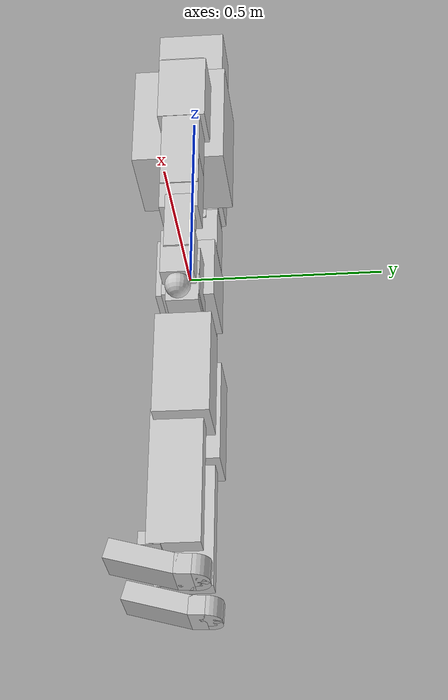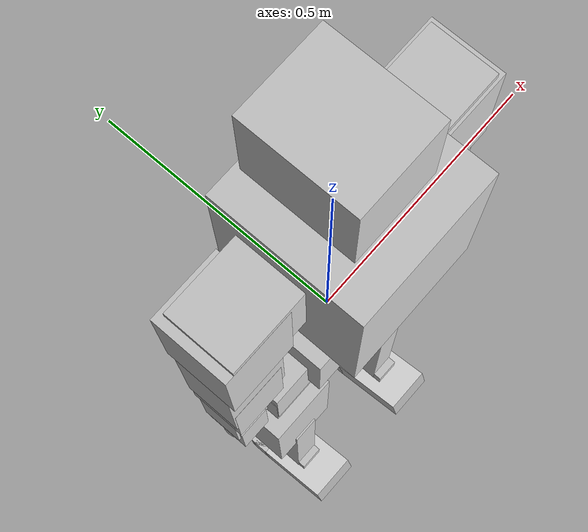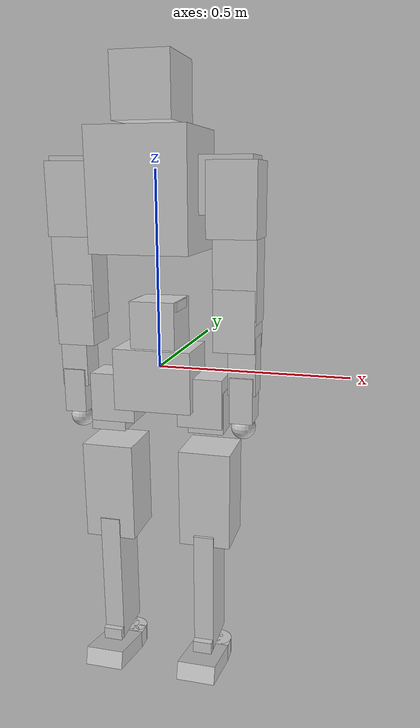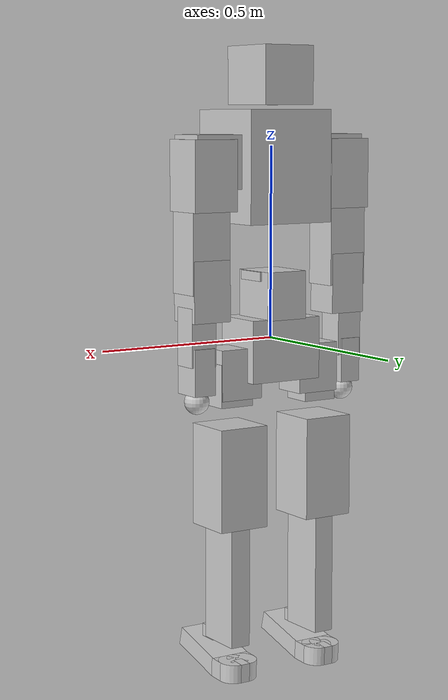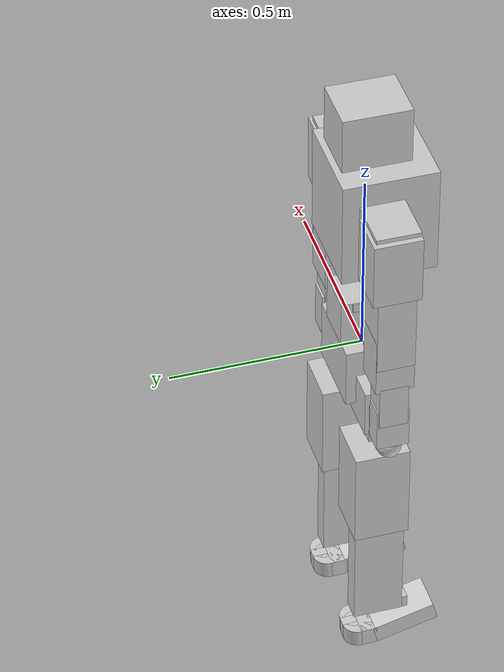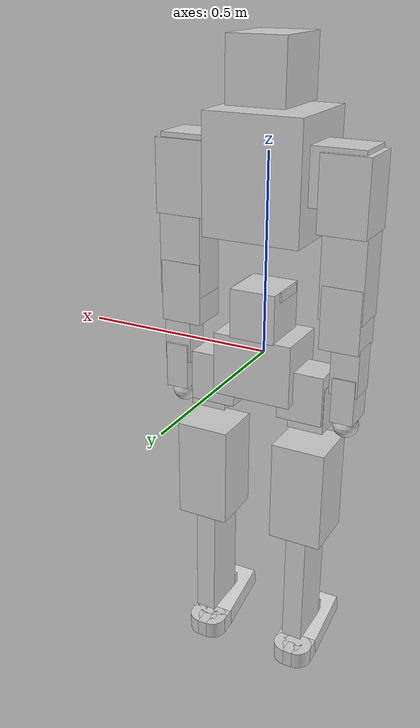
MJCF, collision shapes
<?xml version='1.0' encoding='utf-8'?>
<mujoco model="bello_full_body">
  <option timestep="0.005" gravity="0 0 -9.81" integrator="implicitfast" />
  <compiler angle="radian" />
  <asset>
    <mesh name="pelvis_link" file="../meshes/pelvis_link.stl" scale="0.001 0.001 0.001" />
    <mesh name="left_hip_pitch_link" file="../meshes/left_hip_pitch_link.stl" scale="0.001 0.001 0.001" />
    <mesh name="left_hip_roll_link" file="../meshes/left_hip_roll_link.stl" scale="0.001 0.001 0.001" />
    <mesh name="left_hip_yaw_link" file="../meshes/left_hip_yaw_link.stl" scale="0.001 0.001 0.001" />
    <mesh name="left_knee_link" file="../meshes/left_knee_link.stl" scale="0.001 0.001 0.001" />
    <mesh name="left_ankle_pitch_link" file="../meshes/left_ankle_pitch_link.stl" scale="0.001 0.001 0.001" />
    <mesh name="right_hip_pitch_link" file="../meshes/right_hip_pitch_link.stl" scale="0.001 0.001 0.001" />
    <mesh name="right_hip_roll_link" file="../meshes/right_hip_roll_link.stl" scale="0.001 0.001 0.001" />
    <mesh name="right_hip_yaw_link" file="../meshes/right_hip_yaw_link.stl" scale="0.001 0.001 0.001" />
    <mesh name="right_knee_link" file="../meshes/right_knee_link.stl" scale="0.001 0.001 0.001" />
    <mesh name="right_ankle_pitch_link" file="../meshes/right_ankle_pitch_link.stl" scale="0.001 0.001 0.001" />
    <mesh name="waist_yaw_link" file="../meshes/waist_yaw_link.stl" scale="0.001 0.001 0.001" />
    <mesh name="waist_roll_link" file="../meshes/waist_roll_link.stl" scale="0.001 0.001 0.001" />
    <mesh name="torso_link" file="../meshes/torso_link.stl" scale="0.001 0.001 0.001" />
    <mesh name="neck_link" file="../meshes/neck_link.stl" scale="0.001 0.001 0.001" />
    <mesh name="head_link" file="../meshes/head_link.stl" scale="0.001 0.001 0.001" />
    <mesh name="r_shoulder_pitch_link" file="../meshes/r_shoulder_pitch_link.stl" scale="0.001 0.001 0.001" />
    <mesh name="r_shoulder_roll_link" file="../meshes/r_shoulder_roll_link.stl" scale="0.001 0.001 0.001" />
    <mesh name="r_upper_arm_link" file="../meshes/r_upper_arm_link.stl" scale="0.001 0.001 0.001" />
    <mesh name="r_elbow_link" file="../meshes/r_elbow_link.stl" scale="0.001 0.001 0.001" />
    <mesh name="r_lower_arm_link" file="../meshes/r_lower_arm_link.stl" scale="0.001 0.001 0.001" />
    <mesh name="r_wrist_link" file="../meshes/r_wrist_link.stl" scale="0.001 0.001 0.001" />
    <mesh name="l_shoulder_pitch_link" file="../meshes/l_shoulder_pitch_link.stl" scale="0.001 0.001 0.001" />
    <mesh name="l_shoulder_roll_link" file="../meshes/l_shoulder_roll_link.stl" scale="0.001 0.001 0.001" />
    <mesh name="l_upper_arm_link" file="../meshes/l_upper_arm_link.stl" scale="0.001 0.001 0.001" />
    <mesh name="l_elbow_link" file="../meshes/l_elbow_link.stl" scale="0.001 0.001 0.001" />
    <mesh name="l_lower_arm_link" file="../meshes/l_lower_arm_link.stl" scale="0.001 0.001 0.001" />
    <mesh name="l_wrist_link" file="../meshes/l_wrist_link.stl" scale="0.001 0.001 0.001" />
    <mesh name="pelvis_link_visual" file="../visual_meshes/pelvis_link_visual.stl" scale="0.001 0.001 0.001" />
    <mesh name="left_hip_pitch_link_visual" file="../visual_meshes/left_hip_pitch_link_visual.stl" scale="0.001 0.001 0.001" />
    <mesh name="left_hip_roll_link_visual" file="../visual_meshes/left_hip_roll_link_visual.stl" scale="0.001 0.001 0.001" />
    <mesh name="left_hip_yaw_link_visual" file="../visual_meshes/left_hip_yaw_link_visual.stl" scale="0.001 0.001 0.001" />
    <mesh name="left_knee_link_visual" file="../visual_meshes/left_knee_link_visual.stl" scale="0.001 0.001 0.001" />
    <mesh name="left_ankle_pitch_link_visual" file="../visual_meshes/left_ankle_pitch_link_visual.stl" scale="0.001 0.001 0.001" />
    <mesh name="left_ankle_roll_link_visual" file="../visual_meshes/left_ankle_roll_link_visual.stl" scale="0.001 0.001 0.001" />
    <mesh name="right_hip_pitch_link_visual" file="../visual_meshes/right_hip_pitch_link_visual.stl" scale="0.001 0.001 0.001" />
    <mesh name="right_hip_roll_link_visual" file="../visual_meshes/right_hip_roll_link_visual.stl" scale="0.001 0.001 0.001" />
    <mesh name="right_hip_yaw_link_visual" file="../visual_meshes/right_hip_yaw_link_visual.stl" scale="0.001 0.001 0.001" />
    <mesh name="right_knee_link_visual" file="../visual_meshes/right_knee_link_visual.stl" scale="0.001 0.001 0.001" />
    <mesh name="right_ankle_pitch_link_visual" file="../visual_meshes/right_ankle_pitch_link_visual.stl" scale="0.001 0.001 0.001" />
    <mesh name="right_ankle_roll_link_visual" file="../visual_meshes/right_ankle_roll_link_visual.stl" scale="0.001 0.001 0.001" />
    <mesh name="waist_yaw_link_visual" file="../visual_meshes/waist_yaw_link_visual.stl" scale="0.001 0.001 0.001" />
    <mesh name="waist_roll_link_visual" file="../visual_meshes/waist_roll_link_visual.stl" scale="0.001 0.001 0.001" />
    <mesh name="torso_link_visual" file="../visual_meshes/torso_link_visual.stl" scale="0.001 0.001 0.001" />
    <mesh name="neck_link_visual" file="../visual_meshes/neck_link_visual.stl" scale="0.001 0.001 0.001" />
    <mesh name="head_link_visual" file="../visual_meshes/head_link_visual.stl" scale="0.001 0.001 0.001" />
    <mesh name="r_shoulder_pitch_link_visual" file="../visual_meshes/r_shoulder_pitch_link_visual.stl" scale="0.001 0.001 0.001" />
    <mesh name="r_shoulder_roll_link_visual" file="../visual_meshes/r_shoulder_roll_link_visual.stl" scale="0.001 0.001 0.001" />
    <mesh name="r_upper_arm_link_visual" file="../visual_meshes/r_upper_arm_link_visual.stl" scale="0.001 0.001 0.001" />
    <mesh name="r_elbow_link_visual" file="../visual_meshes/r_elbow_link_visual.stl" scale="0.001 0.001 0.001" />
    <mesh name="r_lower_arm_link_visual" file="../visual_meshes/r_lower_arm_link_visual.stl" scale="0.001 0.001 0.001" />
    <mesh name="r_wrist_link_visual" file="../visual_meshes/r_wrist_link_visual.stl" scale="0.001 0.001 0.001" />
    <mesh name="l_shoulder_pitch_link_visual" file="../visual_meshes/l_shoulder_pitch_link_visual.stl" scale="0.001 0.001 0.001" />
    <mesh name="l_shoulder_roll_link_visual" file="../visual_meshes/l_shoulder_roll_link_visual.stl" scale="0.001 0.001 0.001" />
    <mesh name="l_upper_arm_link_visual" file="../visual_meshes/l_upper_arm_link_visual.stl" scale="0.001 0.001 0.001" />
    <mesh name="l_elbow_link_visual" file="../visual_meshes/l_elbow_link_visual.stl" scale="0.001 0.001 0.001" />
    <mesh name="l_lower_arm_link_visual" file="../visual_meshes/l_lower_arm_link_visual.stl" scale="0.001 0.001 0.001" />
    <mesh name="l_wrist_link_visual" file="../visual_meshes/l_wrist_link_visual.stl" scale="0.001 0.001 0.001" />
  </asset>
  <worldbody>
    <body name="bello_root">
      <freejoint name="root_free" />
      <body name="pelvis_link">
        <inertial pos="0.000202669 0.000321424 0.0107295" quat="0.706916 0.0159064 0.00611244 0.707092" mass="5.89767" diaginertia="0.0312574 0.0252258 0.0230744" />
        <geom name="pelvis_link_collision" type="box" pos="2.0709991e-05 1.6269684e-05 -0.024007189" size="0.103535 0.07448373 0.081729887" rgba="0.8 0.8 0.8 0" />
        <body name="left_hip_pitch_link" pos="-0.074208 0 -0.0500658" quat="0.5 0 -0.866025 0">
          <inertial pos="3.94635e-05 0.00298891 0.0581141" quat="0.983847 -0.0469592 -0.171308 -0.022212" mass="1.5902" diaginertia="0.00320422 0.0029649 0.00235726" />
          <joint name="left_hip_pitch_joint" pos="0 0 0" axis="-2.01892e-07 0 1" range="-1.5708 1.5708" actuatorfrcrange="-120 120" />
          <geom name="left_hip_pitch_link_collision" pos="-0.0055080189 0 0.056567297" quat="-0.5 0 -0.866025 0" type="box" size="0.060306705 0.048 0.06542677" rgba="0.8 0.8 0.8 0" />
          <body name="left_hip_roll_link" pos="-0.015 0.0275 0.078" quat="-0.353553 -0.353553 -0.612372 0.612372">
            <inertial pos="0.000231238 -0.0521909 0.0302062" quat="0.660826 0.750539 0.000939378 -0.00071281" mass="1.48802" diaginertia="0.00430649 0.00405718 0.00198016" />
            <joint name="left_hip_roll_joint" pos="0 0 0" axis="0 0 1" range="-1.5708 1.5708" actuatorfrcrange="-60 60" />
            <geom name="left_hip_roll_link_collision" pos="-2.7743713e-05 -0.011542096 0.031979977" quat="0.707107 -0.707107 0 0" type="box" size="0.047350609 0.041479904 0.0604685" rgba="0.8 0.8 0.8 0" />
            <body name="left_hip_yaw_link" pos="3.178e-05 -0.072 0.0275" quat="0.00015609 -0.00015609 0.707107 -0.707107">
              <inertial pos="-0.00017432 0.0025829 0.132024" quat="0.706849 -0.0189517 0.0191077 0.706853" mass="4.93723" diaginertia="0.0255658 0.0249308 0.0118932" />
              <joint name="left_hip_yaw_joint" pos="0 0 0" axis="4.88867e-07 0 1" range="-1.5708 1.5708" actuatorfrcrange="-60 60" />
              <geom name="left_hip_yaw_link_collision" pos="0.00051881962 0.0056284866 0.17520377" quat="-0.000220744 0 1 0" type="box" size="0.070200081 0.071601624 0.13571301" rgba="0.8 0.8 0.8 0" />
              <body name="left_knee_link" pos="-0.0095 0 0.280941" quat="0.707107 0 0.707107 0">
                <inertial pos="-0.139841 -0.0139537 0.00956892" quat="-0.102336 0.701871 0.0991192 0.697911" mass="2.90716" diaginertia="0.0244174 0.0235746 0.00354232" />
                <joint name="left_knee_joint" pos="0 0 0" axis="4.88867e-07 0 1" range="0 2.0944" actuatorfrcrange="-120 120" />
                <geom name="left_knee_link_collision" pos="-0.16346685 -0.004106987 0.0094499111" quat="0.706951 0 0.707263 0" type="box" size="0.027530079 0.065521202 0.18894237" rgba="0.8 0.8 0.8 0" />
                <body name="left_ankle_pitch_link" pos="-0.334898 -0.0586775 -0.01" quat="0 1 0 0">
                  <inertial pos="0.0128998 2.83574e-08 -0.00817509" quat="0.991445 1.44061e-05 -0.000109428 -0.130523" mass="0.0463658" diaginertia="9.67925e-06 8.54909e-06 3.02578e-06" />
                  <joint name="left_ankle_pitch_joint" pos="0 0 0" axis="-4.88867e-07 0 1" range="-0.5236 1.0472" actuatorfrcrange="-40 40" />
                  <geom name="left_ankle_pitch_link_collision" pos="6.3331507e-07 -1.4409262e-07 -0.019499603" quat="0 0.706951 0 0.707263" type="box" size="0.026503742 0.026814933 0.016975616" rgba="0.8 0.8 0.8 0" />
                  <body name="left_ankle_roll_link" pos="-0.0064703 -0.0241482 -0.0195" quat="0.430581 0.561076 0.430342 -0.560892">
                    <inertial pos="-7.2274e-05 -0.027664 -0.00509084" quat="0.706463 0.031921 -0.0318874 0.70631" mass="1.37231" diaginertia="0.00762962 0.00699076 0.00198039" />
                    <joint name="left_ankle_roll_joint" pos="0 0 0" axis="2.6273e-07 2.65238e-07 1" range="-0.1745 0.1745" actuatorfrcrange="-40 40" />
                    <geom name="left_ankle_roll_link_collision_box_1" size="0.053 0.085035 0.025" pos="-0.00012931 -0.0557586 -0.0250295" quat="-4.03978e-05 4.03981e-05 0.707104 0.707109" type="box" rgba="0.8 0.8 0.8 0" />
                    <geom name="left_ankle_roll_link_collision_box_2" size="0.013 0.02 0.025" pos="-0.00011327 -0.0434219 0.115348" quat="-4.43993e-05 3.59541e-05 0.777144 0.629323" type="box" rgba="0.8 0.8 0.8 0" />
                    <geom name="left_ankle_roll_link_collision_box_3" size="0.053 0.020975 0.025" pos="-0.00011785 -0.0519404 0.0752713" quat="-4.43993e-05 3.59541e-05 0.777144 0.629323" type="box" rgba="0.8 0.8 0.8 0" />
                    <geom name="left_ankle_roll_link_collision_cylinder_1" size="0.04 0.025" pos="-0.0131155 -0.0475817 0.0957789" quat="-4.43993e-05 3.59541e-05 0.777144 0.629323" type="cylinder" rgba="0.8 0.8 0.8 0" />
                    <geom name="left_ankle_roll_link_collision_cylinder_2" size="0.04 0.025" pos="0.0128845 -0.0475817 0.0957759" quat="-4.43993e-05 3.59541e-05 0.777144 0.629323" type="cylinder" rgba="0.8 0.8 0.8 0" />
                    <geom name="left_ankle_roll_link_visual" type="mesh" mesh="left_ankle_roll_link_visual" contype="0" conaffinity="0" group="1" pos="-0.13397118874641967 0.7781687253169265 -0.17274116763904332" quat="-4.5325223e-05 3.4779523e-05 0.79335118 0.60876425" />
                  </body>
                  <geom name="left_ankle_pitch_link_visual" type="mesh" mesh="left_ankle_pitch_link_visual" contype="0" conaffinity="0" group="1" pos="0.789836662721809 -0.05867748 0.11480302524804908" quat="4.330736e-17 0.70695067 -4.3288244e-17 0.70726285" />
                </body>
                <geom name="left_knee_link_visual" type="mesh" mesh="left_knee_link_visual" contype="0" conaffinity="0" group="1" pos="0.45493823519251964 0.0 -0.1248030323095103" quat="0.70695067 1.9115497e-20 0.70726285 1.9115497e-20" />
              </body>
              <geom name="left_hip_yaw_link_visual" type="mesh" mesh="left_hip_yaw_link_visual" contype="0" conaffinity="0" group="1" pos="-0.13430303076388805 0.0 -0.1739968736698928" quat="-0.00022074442 6.1245855e-17 0.99999998 6.1245855e-17" />
            </body>
            <geom name="left_hip_roll_link_visual" type="mesh" mesh="left_hip_roll_link_visual" contype="0" conaffinity="0" group="1" pos="0.13425798 0.10205615999999999 0.0275" quat="0.70710678 -0.70710678 -0 0" />
          </body>
          <geom name="left_hip_pitch_link_visual" type="mesh" mesh="left_hip_pitch_link_visual" contype="0" conaffinity="0" group="1" pos="0.006254237340263292 -1.5285649967993768e-16 -0.089298903164037" quat="-0.5 -8.6080105e-16 -0.8660254 1.4297188e-15" />
        </body>
        <body name="right_hip_pitch_link" pos="0.074208 0 -0.0500658" quat="0.5 0 0.866025 0">
          <inertial pos="-3.94635e-05 -0.00298891 0.0581141" quat="0.983847 0.0469592 0.171308 -0.022212" mass="1.5902" diaginertia="0.00320422 0.0029649 0.00235726" />
          <joint name="right_hip_pitch_joint" pos="0 0 0" axis="2.01892e-07 0 1" range="-1.5708 1.5708" actuatorfrcrange="-120 120" />
          <geom name="right_hip_pitch_link_collision" pos="0.0048585007 0 0.056192298" quat="-0.5 0 0.866025 0" type="box" size="0.060306705 0.048 0.06617677" rgba="0.8 0.8 0.8 0" />
          <body name="right_hip_roll_link" pos="0.015 -0.0275 0.078" quat="-0.353553 0.353553 0.612372 0.612372">
            <inertial pos="-0.000231238 0.0521909 0.0302062" quat="0.750539 0.660826 -0.00071281 0.000939378" mass="1.48802" diaginertia="0.00430649 0.00405718 0.00198016" />
            <joint name="right_hip_roll_joint" pos="0 0 0" axis="0 0 1" range="-1.5708 1.5708" actuatorfrcrange="-60 60" />
            <geom name="right_hip_roll_link_collision" pos="1.9234467e-05 0.0078806382 0.03192507" quat="0.707107 0.707107 0 0" type="box" size="0.047286579 0.041424999 0.056360516" rgba="0.8 0.8 0.8 0" />
            <body name="right_hip_yaw_link" pos="0 0.072 0.0275" quat="0.707107 -0.707107 0 0">
              <inertial pos="-0.000264387 -0.0025829 0.132024" quat="0.706849 0.0189517 -0.0191077 0.706853" mass="4.93723" diaginertia="0.0255658 0.0249308 0.0118932" />
              <joint name="right_hip_yaw_joint" pos="0 0 0" axis="0 0 1" range="-1.5708 1.5708" actuatorfrcrange="-60 60" />
              <geom name="right_hip_yaw_link_collision" pos="0.00043298035 -0.011513824 0.17642353" quat="0 1 0 0" type="box" size="0.070133011 0.069942612 0.13449837" rgba="0.8 0.8 0.8 0" />
              <body name="right_knee_link" pos="0.00950001 0 0.280941" quat="0 -0.707107 0 0.707107">
                <inertial pos="-0.139841 -0.0139537 0.00964864" quat="-0.0991418 0.698066 0.102314 0.701717" mass="2.90716" diaginertia="0.0244174 0.0235746 0.00354232" />
                <joint name="right_knee_joint" pos="0 0 0" axis="0 0 1" range="0 2.0944" actuatorfrcrange="-120 120" />
                <geom name="right_knee_link_collision" pos="-0.17481932 -0.0022716771 0.0095003366" quat="0.707107 0 0.707107 0" type="box" size="0.027499996 0.064957396 0.17468437" rgba="0.8 0.8 0.8 0" />
                <body name="right_ankle_pitch_link" pos="-0.334898 -0.0586775 -0.01" quat="0 1 0 0">
                  <inertial pos="0.0129049 2.83574e-08 -0.0311229" quat="0.991445 1.44061e-05 -0.000109428 -0.130523" mass="0.0463658" diaginertia="9.67925e-06 8.54909e-06 3.02578e-06" />
                  <joint name="right_ankle_pitch_joint" pos="0 0 0" axis="0 0 1" range="-0.5236 1.0472" actuatorfrcrange="-40 40" />
                  <geom name="right_ankle_pitch_link_collision" pos="2.2582944e-07 3.4741624e-06 -0.019499458" quat="0 -0.707107 0 -0.707107" type="box" size="0.026499996 0.026874038 0.016975708" rgba="0.8 0.8 0.8 0" />
                  <body name="right_ankle_roll_link" pos="-0.00647031 -0.0241482 -0.0195" quat="0.560984 0.430461 -0.560984 0.430461">
                    <inertial pos="-0.000378232 0.0276639 -0.00509087" quat="0.706312 -0.0319278 0.0318806 0.706461" mass="1.37231" diaginertia="0.00762962 0.00699076 0.00198039" />
                    <joint name="right_ankle_roll_joint" pos="0 0 0" axis="0 -2.89601e-07 1" range="-0.1745 0.1745" actuatorfrcrange="-40 40" />
                    <geom name="right_ankle_roll_link_collision_box_1" size="0.053 0.085035 0.025" pos="0 0.056 -0.0249648" quat="0.707109 0.707104 0 0" type="box" rgba="0.8 0.8 0.8 0" />
                    <geom name="right_ankle_roll_link_collision_box_2" size="0.013 0.02 0.025" pos="0 0.0436634 0.115412" quat="0.629323 0.777144 0 0" type="box" rgba="0.8 0.8 0.8 0" />
                    <geom name="right_ankle_roll_link_collision_box_3" size="0.053 0.020975 0.025" pos="0 0.0521818 0.075336" quat="0.629323 0.777144 0 0" type="box" rgba="0.8 0.8 0.8 0" />
                    <geom name="right_ankle_roll_link_collision_cylinder_1" size="0.04 0.025" pos="-0.013 0.0478231 0.0958421" quat="0.629323 0.777144 0 0" type="cylinder" rgba="0.8 0.8 0.8 0" />
                    <geom name="right_ankle_roll_link_collision_cylinder_2" size="0.04 0.025" pos="0.013 0.0478231 0.0958421" quat="0.629323 0.777144 0 0" type="cylinder" rgba="0.8 0.8 0.8 0" />
                    <geom name="right_ankle_roll_link_visual" type="mesh" mesh="right_ankle_roll_link_visual" contype="0" conaffinity="0" group="1" pos="-0.13382497731765536 -0.777927306787565 -0.17269180847454368" quat="0.60876424 0.79335119 0 0" />
                  </body>
                  <geom name="right_ankle_pitch_link_visual" type="mesh" mesh="right_ankle_pitch_link_visual" contype="0" conaffinity="0" group="1" pos="0.7896459399881726 -0.05867747996481914 -0.15332497731765535" quat="4.3297803e-17 -0.70710678 -4.3297803e-17 -0.70710678" />
                </body>
                <geom name="right_knee_link_visual" type="mesh" mesh="right_knee_link_visual" contype="0" conaffinity="0" group="1" pos="0.45474751998817253 -3.51809074956968e-11 0.1433249773176553" quat="0.70710678 -0 0.70710678 0" />
              </body>
              <geom name="right_hip_yaw_link_visual" type="mesh" mesh="right_hip_yaw_link_visual" contype="0" conaffinity="0" group="1" pos="-0.13382496731765536 3.517818966973252e-11 -0.17380615998817248" quat="6.123234e-17 1 0 0" />
            </body>
            <geom name="right_hip_roll_link_visual" type="mesh" mesh="right_hip_roll_link_visual" contype="0" conaffinity="0" group="1" pos="-0.13382496731650065 -0.1018061599881725 0.027500000000046182" quat="0.70710678 0.70710678 -1.9626156e-17 -1.9626156e-17" />
          </body>
          <geom name="right_hip_pitch_link_visual" type="mesh" mesh="right_hip_pitch_link_visual" contype="0" conaffinity="0" group="1" pos="-0.006254237340286433 -5.700018013619654e-16 -0.08879890316400728" quat="-0.5 8.3644932e-17 0.8660254 8.3644932e-17" />
        </body>
        <body name="waist_yaw_link" pos="0 0 0.0575">
          <inertial pos="-1.20986e-11 0.00628053 0.0506612" quat="0.502671 0.497315 -0.497315 0.502671" mass="0.560466" diaginertia="0.00187996 0.000973196 0.000945286" />
          <joint name="waist_yaw_joint" pos="0 0 0" axis="0 0 1" range="-0.785398163 0.785398163" actuatorfrcrange="-120 120" />
          <geom name="waist_yaw_link_collision" pos="0.0001003685 0.0080750484 0.059734848" quat="1 0 0 0" type="box" rgba="0.8 0.8 0.8 0" size="0.05909071 0.066924952 0.062734848" />
          <body name="waist_roll_link" pos="0 0.04 0.1095">
            <geom name="waist_roll_link_collision" pos="0 -0.04 6.9388939e-18" quat="1 0 0 0" type="box" rgba="0.8 0.8 0.8 0" size="0.063 0.045 0.012" mass="0" />
            <body name="torso_link" pos="0 -0.04 0">
              <inertial pos="0.000740166 -0.0124644 0.221762" quat="0.713142 -0.0193755 0.0416243 0.699514" mass="12.1237" diaginertia="0.122813 0.108053 0.0668055" />
              <geom name="torso_link_collision" pos="0.0013604202 -0.027035789 0.28224463" quat="1 0 0 0" type="box" rgba="0.8 0.8 0.8 0" size="0.12363958 0.12205076 0.14475537" />
              <body name="neck_link" pos="0 0.01 0.424">
                <inertial pos="0.0069897 -3.17984e-08 0.0301398" quat="0.983583 0 0.180459 0" mass="0.0661092" diaginertia="4.28269e-05 3.86881e-05 1.55218e-05" />
                <geom name="neck_link_collision" pos="0.042436116 -8.090353e-05 0.054988342" quat="1 0 0 0" type="box" rgba="0.8 0.8 0.8 0" size="0.0234136 0.021869096 0.022959656" />
                <body name="head_link" pos="0.063 0 0.054997">
                  <inertial pos="-0.0636714 -0.00132237 0.0419138" quat="0.484242 0.514212 -0.449671 0.54671" mass="0.603675" diaginertia="0.00319428 0.00270003 0.00244996" />
                  <geom name="head_link_collision" pos="-0.063678585 -0.015789494 0.035003168" type="box" rgba="0.8 0.8 0.8 0" size="0.073278584 0.088306881 0.074999832" />
                  <body name="head_camera_frame_link" pos="-0.033 0.063443 0.026953" />
                  <body name="head_left_camera_frame_link" pos="-0.134 -0.02 0.055" />
                  <body name="head_right_camera_frame_link" pos="0.008 -0.02 0.055" />
                  <geom name="head_link_visual" type="mesh" mesh="head_link_visual" contype="0" conaffinity="0" group="1" pos="-0.063 -0.01 -0.530997" quat="1 0 0 0" />
                </body>
                <geom name="neck_link_visual" type="mesh" mesh="neck_link_visual" contype="0" conaffinity="0" group="1" pos="-0.0 -0.01 -0.476" quat="1 0 0 0" />
              </body>
              <body name="r_shoulder_pitch_link" pos="0.1095 0 0.295">
                <inertial pos="0.0785965 -0.00240127 1.20702e-05" quat="0.489305 0.495679 0.50465 0.51011" mass="1.50376" diaginertia="0.00328032 0.00278296 0.00200863" />
                <joint name="right_shoulder_pitch_joint" pos="0 0 0" axis="1 0 0" range="-0.785398 2.96706" actuatorfrcrange="-120 120" />
                <geom name="r_shoulder_pitch_link_collision" pos="0.073291489 -0.0012742825 6.5429688e-05" quat="1 0 0 0" type="box" rgba="0.8 0.8 0.8 0" size="0.073791489 0.055710917 0.06893457" />
                <body name="r_shoulder_roll_link" pos="0.091 -0.0275 0">
                  <inertial pos="0.0121774 0.0266984 -0.0650075" quat="0.994528 0.0183466 -0.102848 -0.000697108" mass="1.37453" diaginertia="0.00520445 0.00446014 0.00273623" />
                  <joint name="right_shoulder_roll_joint" pos="0 0 0" axis="0 -1 0" range="-0.2 2" actuatorfrcrange="-60 60" />
                  <geom name="r_shoulder_roll_link_collision" pos="0.0053169785 0.027499998 -0.033638405" type="box" rgba="0.8 0.8 0.8 0" size="0.062563362 0.061500013 0.09086158" />
                  <body name="r_upper_arm_link" pos="0.018002 0.0275 -0.124499">
                    <inertial pos="-0.0086503 -0.00528 -0.119379" quat="0.769049 0.0300888 0.0506837 0.636466" mass="1.31383" diaginertia="0.00591888 0.00586467 0.0014449" />
                    <joint name="right_shoulder_yaw_joint" pos="0 0 0" axis="-4.4e-05 0 1" range="-1.5 2" actuatorfrcrange="-36 36" />
                    <geom name="r_upper_arm_link_collision" pos="-0.0062463085 2.6702881e-08 -0.087493729" quat="1 0 0 0" type="box" rgba="0.8 0.8 0.8 0" size="0.055246567 0.048867447 0.12099599" />
                    <body name="r_elbow_link" pos="-0.014993 -0.02575 -0.162001">
                      <inertial pos="0.0158127 0.0259655 -0.0539569" quat="0.992211 -0.00380333 -0.124506 -0.000932466" mass="0.715824" diaginertia="0.00241193 0.00208131 0.000851117" />
                      <joint name="right_elbow_pitch_joint" pos="0 0 0" axis="0 1 0" range="-0.15 2.4" actuatorfrcrange="-36 36" />
                      <geom name="r_elbow_link_collision" pos="0.0072497585 0.025750088 -0.038834774" type="box" rgba="0.8 0.8 0.8 0" size="0.053729736 0.049250015 0.07916325" />
                      <body name="r_lower_arm_link" pos="0.025005 0.02575 -0.117998">
                        <inertial pos="-0.000227289 0.00388846 -0.0626326" quat="0.99932 0.036782 0.00253972 -6.59347e-05" mass="0.536588" diaginertia="0.000948942 0.000816287 0.000368573" />
                        <joint name="right_elbow_yaw_joint" pos="0 0 0" axis="-4.4e-05 0 1" range="-0.523599 2.0944" actuatorfrcrange="-14 14" />
                        <geom name="r_lower_arm_link_collision" pos="4.0504395e-05 0.0014679947 -0.038003589" quat="1 0 0 0" type="box" rgba="0.8 0.8 0.8 0" size="0.035963593 0.035597202 0.076003172" />
                        <body name="r_wrist_link" pos="4e-06 0.0275 -0.086">
                          <inertial pos="9.17713e-07 -0.0247501 -0.0187826" quat="0.667438 0.744665 -1.46192e-05 1.63135e-05" mass="0.122562" diaginertia="0.00015856 0.000124266 7.33223e-05" />
                          <joint name="right_wrist_pitch_joint" pos="0 0 0" axis="0 -1 0" range="-1.5 1.5" actuatorfrcrange="-14 14" />
                          <geom name="r_wrist_link_collision" pos="0.00056383289 -0.026768002 -0.041212674" quat="1 0 0 0" type="box" rgba="0.8 0.8 0.8 0" size="0.030320023 0.042474491 0.060788517" />
                          <body name="r_end_effector_sphere_link" pos="5e-06 -0.0275 -0.102" quat="0 0 0 1">
                            <geom name="r_end_effector_sphere_link_collision" size="0.0325" pos="0 0 -0.02" rgba="0.8 0.8 0.8 0" mass="0" />
                          </body>
                          <geom name="r_wrist_link_visual" type="mesh" mesh="r_wrist_link_visual" contype="0" conaffinity="0" group="1" pos="-0.228518 -0.0275 0.143498" quat="1 0 0 0" />
                        </body>
                        <geom name="r_lower_arm_link_visual" type="mesh" mesh="r_lower_arm_link_visual" contype="0" conaffinity="0" group="1" pos="-0.228514 -0.0 0.057498" quat="1 0 0 0" />
                      </body>
                      <geom name="r_elbow_link_visual" type="mesh" mesh="r_elbow_link_visual" contype="0" conaffinity="0" group="1" pos="-0.203509 0.02575 -0.0605" quat="1 0 0 0" />
                    </body>
                    <geom name="r_upper_arm_link_visual" type="mesh" mesh="r_upper_arm_link_visual" contype="0" conaffinity="0" group="1" pos="-0.218502 -0.0 -0.222501" quat="1 0 0 0" />
                  </body>
                  <geom name="r_shoulder_roll_link_visual" type="mesh" mesh="r_shoulder_roll_link_visual" contype="0" conaffinity="0" group="1" pos="-0.2005 0.0275 -0.347" quat="1 0 0 0" />
                </body>
                <geom name="r_shoulder_pitch_link_visual" type="mesh" mesh="r_shoulder_pitch_link_visual" contype="0" conaffinity="0" group="1" pos="-0.1095 -0.0 -0.347" quat="1 0 0 0" />
              </body>
              <body name="l_shoulder_pitch_link" pos="-0.1095 0 0.295">
                <inertial pos="-0.0785965 0.00240127 1.20702e-05" quat="0.495679 0.489305 0.51011 0.50465" mass="1.50376" diaginertia="0.00328032 0.00278296 0.00200863" />
                <joint name="left_shoulder_pitch_joint" pos="0 0 0" axis="-1 0 0" range="-2.96706 0.785398" actuatorfrcrange="-120 120" />
                <geom name="l_shoulder_pitch_link_collision" pos="-0.071638062 -0.0047969627 3.1951904e-05" quat="1 0 0 0" type="box" rgba="0.8 0.8 0.8 0" size="0.072138062 0.05665604 0.068901093" />
                <body name="l_shoulder_roll_link" pos="-0.091 0.0275 0">
                  <inertial pos="-0.0121774 -0.0266984 -0.0650075" quat="0.994528 -0.0183466 0.102848 -0.000697108" mass="1.37453" diaginertia="0.00520445 0.00446014 0.00273623" />
                  <joint name="left_shoulder_roll_joint" pos="0 0 0" axis="0 1 0" range="-0.2 2" actuatorfrcrange="-60 60" />
                  <geom name="l_shoulder_roll_link_collision" pos="-0.0078114548 -0.0275 -0.033638412" type="box" rgba="0.8 0.8 0.8 0" size="0.059711189 0.0615 0.090861588" />
                  <body name="l_upper_arm_link" pos="-0.018002 -0.0275 -0.124499">
                    <inertial pos="0.0086503 0.00528 -0.119379" quat="0.769049 -0.0300888 -0.0506837 0.636466" mass="1.31383" diaginertia="0.00591888 0.00586467 0.0014449" />
                    <joint name="left_shoulder_yaw_joint" pos="0 0 0" axis="4.4e-05 0 1" range="-1.5 2" actuatorfrcrange="-36 36" />
                    <geom name="l_upper_arm_link_collision" pos="0.0054945308 -9.4499588e-05 -0.085921301" quat="1 0 0 0" type="box" rgba="0.8 0.8 0.8 0" size="0.054493111 0.0489055 0.11942354" />
                    <body name="l_elbow_link" pos="0.014993 0.02575 -0.162001">
                      <inertial pos="-0.0158127 -0.0259655 -0.0539569" quat="0.992211 0.00380333 0.124506 -0.000932466" mass="0.715824" diaginertia="0.00241193 0.00208131 0.000851117" />
                      <joint name="left_elbow_pitch_joint" pos="0 0 0" axis="0 -1 0" range="-0.15 2.4" actuatorfrcrange="-36 36" />
                      <geom name="l_elbow_link_collision" pos="-0.01069356 -0.02575 -0.038584583" type="box" rgba="0.8 0.8 0.8 0" size="0.050093216 0.04925 0.079414501" />
                      <body name="l_lower_arm_link" pos="-0.025005 -0.02575 -0.117998">
                        <inertial pos="0.000227289 -0.00388846 -0.0626326" quat="0.99932 -0.036782 -0.00253972 -6.59347e-05" mass="0.536588" diaginertia="0.000948942 0.000816287 0.000368573" />
                        <joint name="left_elbow_yaw_joint" pos="0 0 0" axis="4.4e-05 0 1" range="-2.0944 0.523599" actuatorfrcrange="-14 14" />
                        <geom name="l_lower_arm_link_collision" pos="-4.0969238e-06 0.0012528152 -0.053122588" quat="1 0 0 0" type="box" rgba="0.8 0.8 0.8 0" size="0.035927185 0.037128864 0.061122164" />
                        <body name="l_wrist_link" pos="-4e-06 -0.0275 -0.086">
                          <inertial pos="-9.17713e-07 0.0247501 -0.0187826" quat="0.744665 0.667438 1.63135e-05 -1.46192e-05" mass="0.122562" diaginertia="0.00015856 0.000124266 7.33223e-05" />
                          <joint name="left_wrist_pitch_joint" pos="0 0 0" axis="0 1 0" range="-1.5 1.5" actuatorfrcrange="-14 14" />
                          <geom name="l_wrist_link_collision" pos="-0.0014810692 0.028031219 -0.043028871" quat="1 0 0 0" type="box" rgba="0.8 0.8 0.8 0" size="0.0295186 0.041822884 0.058972321" />
                          <body name="l_end_effector_sphere_link" pos="-5e-06 0.0275 -0.102" quat="1 0 0 0">
                            <geom name="l_end_effector_sphere_link_collision" size="0.0325" pos="0 0 -0.02" rgba="0.8 0.8 0.8 0" mass="0" />
                          </body>
                          <geom name="l_wrist_link_visual" type="mesh" mesh="l_wrist_link_visual" contype="0" conaffinity="0" group="1" pos="0.228518 0.0275 0.143498" quat="1 0 0 0" />
                        </body>
                        <geom name="l_lower_arm_link_visual" type="mesh" mesh="l_lower_arm_link_visual" contype="0" conaffinity="0" group="1" pos="0.228514 -0.0 0.057498" quat="1 0 0 0" />
                      </body>
                      <geom name="l_elbow_link_visual" type="mesh" mesh="l_elbow_link_visual" contype="0" conaffinity="0" group="1" pos="0.203509 -0.02575 -0.0605" quat="1 0 0 0" />
                    </body>
                    <geom name="l_upper_arm_link_visual" type="mesh" mesh="l_upper_arm_link_visual" contype="0" conaffinity="0" group="1" pos="0.218502 -0.0 -0.222501" quat="1 0 0 0" />
                  </body>
                  <geom name="l_shoulder_roll_link_visual" type="mesh" mesh="l_shoulder_roll_link_visual" contype="0" conaffinity="0" group="1" pos="0.2005 -0.0275 -0.347" quat="1 0 0 0" />
                </body>
                <geom name="l_shoulder_pitch_link_visual" type="mesh" mesh="l_shoulder_pitch_link_visual" contype="0" conaffinity="0" group="1" pos="0.1095 0.0 -0.347" quat="1 0 0 0" />
              </body>
              <geom name="torso_link_visual" type="mesh" mesh="torso_link_visual" contype="0" conaffinity="0" group="1" pos="-0.0 -0.0 -0.052" quat="1 0 0 0" />
            </body>
            <geom name="waist_roll_link_visual" type="mesh" mesh="waist_roll_link_visual" contype="0" conaffinity="0" group="1" pos="-0.0 -0.04 -0.052" quat="1 0 0 0" mass="0" />
          </body>
          <geom name="waist_yaw_link_visual" type="mesh" mesh="waist_yaw_link_visual" contype="0" conaffinity="0" group="1" pos="0.0 0.0 0.0575" quat="1 0 0 0" />
        </body>
        <geom name="pelvis_link_visual" type="mesh" mesh="pelvis_link_visual" contype="0" conaffinity="0" group="1" pos="0.0 0.0 0.0" quat="1 0 0 0" />
      </body>
      <site name="bello_acceleration_stage_site" size="0.001" rgba="0 0 0 0" />
    </body>
  </worldbody>
  <sensor>
    <accelerometer name="bello_acceleration_stage_sensor" site="bello_acceleration_stage_site" />
  </sensor>
  <contact>
    <exclude body1="bello_root" body2="pelvis_link" />
    <exclude body1="bello_root" body2="left_hip_pitch_link" />
    <exclude body1="bello_root" body2="right_hip_pitch_link" />
    <exclude body1="bello_root" body2="waist_yaw_link" />
    <exclude body1="pelvis_link" body2="left_hip_pitch_link" />
    <exclude body1="pelvis_link" body2="left_hip_roll_link" />
    <exclude body1="pelvis_link" body2="right_hip_pitch_link" />
    <exclude body1="pelvis_link" body2="right_hip_roll_link" />
    <exclude body1="pelvis_link" body2="waist_yaw_link" />
    <exclude body1="pelvis_link" body2="waist_roll_link" />
    <exclude body1="left_hip_pitch_link" body2="left_hip_roll_link" />
    <exclude body1="left_hip_pitch_link" body2="left_hip_yaw_link" />
    <exclude body1="left_hip_pitch_link" body2="right_hip_pitch_link" />
    <exclude body1="left_hip_pitch_link" body2="waist_yaw_link" />
    <exclude body1="left_hip_roll_link" body2="left_hip_yaw_link" />
    <exclude body1="left_hip_roll_link" body2="left_knee_link" />
    <exclude body1="left_hip_yaw_link" body2="left_knee_link" />
    <exclude body1="left_hip_yaw_link" body2="left_ankle_pitch_link" />
    <exclude body1="left_knee_link" body2="left_ankle_pitch_link" />
    <exclude body1="left_knee_link" body2="left_ankle_roll_link" />
    <exclude body1="left_ankle_pitch_link" body2="left_ankle_roll_link" />
    <exclude body1="right_hip_pitch_link" body2="right_hip_roll_link" />
    <exclude body1="right_hip_pitch_link" body2="right_hip_yaw_link" />
    <exclude body1="right_hip_pitch_link" body2="waist_yaw_link" />
    <exclude body1="right_hip_roll_link" body2="right_hip_yaw_link" />
    <exclude body1="right_hip_roll_link" body2="right_knee_link" />
    <exclude body1="right_hip_yaw_link" body2="right_knee_link" />
    <exclude body1="right_hip_yaw_link" body2="right_ankle_pitch_link" />
    <exclude body1="right_knee_link" body2="right_ankle_pitch_link" />
    <exclude body1="right_knee_link" body2="right_ankle_roll_link" />
    <exclude body1="right_ankle_pitch_link" body2="right_ankle_roll_link" />
    <exclude body1="waist_yaw_link" body2="waist_roll_link" />
    <exclude body1="waist_yaw_link" body2="torso_link" />
    <exclude body1="waist_roll_link" body2="torso_link" />
    <exclude body1="waist_roll_link" body2="neck_link" />
    <exclude body1="waist_roll_link" body2="r_shoulder_pitch_link" />
    <exclude body1="waist_roll_link" body2="l_shoulder_pitch_link" />
    <exclude body1="torso_link" body2="neck_link" />
    <exclude body1="torso_link" body2="head_link" />
    <exclude body1="torso_link" body2="r_shoulder_pitch_link" />
    <exclude body1="torso_link" body2="r_shoulder_roll_link" />
    <exclude body1="torso_link" body2="l_shoulder_pitch_link" />
    <exclude body1="torso_link" body2="l_shoulder_roll_link" />
    <exclude body1="neck_link" body2="head_link" />
    <exclude body1="neck_link" body2="head_camera_frame_link" />
    <exclude body1="neck_link" body2="head_left_camera_frame_link" />
    <exclude body1="neck_link" body2="head_right_camera_frame_link" />
    <exclude body1="neck_link" body2="r_shoulder_pitch_link" />
    <exclude body1="neck_link" body2="l_shoulder_pitch_link" />
    <exclude body1="head_link" body2="head_camera_frame_link" />
    <exclude body1="head_link" body2="head_left_camera_frame_link" />
    <exclude body1="head_link" body2="head_right_camera_frame_link" />
    <exclude body1="head_camera_frame_link" body2="head_left_camera_frame_link" />
    <exclude body1="head_camera_frame_link" body2="head_right_camera_frame_link" />
    <exclude body1="head_left_camera_frame_link" body2="head_right_camera_frame_link" />
    <exclude body1="r_shoulder_pitch_link" body2="r_shoulder_roll_link" />
    <exclude body1="r_shoulder_pitch_link" body2="r_upper_arm_link" />
    <exclude body1="r_shoulder_pitch_link" body2="l_shoulder_pitch_link" />
    <exclude body1="r_shoulder_roll_link" body2="r_upper_arm_link" />
    <exclude body1="r_shoulder_roll_link" body2="r_elbow_link" />
    <exclude body1="r_upper_arm_link" body2="r_elbow_link" />
    <exclude body1="r_upper_arm_link" body2="r_lower_arm_link" />
    <exclude body1="r_elbow_link" body2="r_lower_arm_link" />
    <exclude body1="r_elbow_link" body2="r_wrist_link" />
    <exclude body1="r_lower_arm_link" body2="r_wrist_link" />
    <exclude body1="r_lower_arm_link" body2="r_end_effector_sphere_link" />
    <exclude body1="r_wrist_link" body2="r_end_effector_sphere_link" />
    <exclude body1="l_shoulder_pitch_link" body2="l_shoulder_roll_link" />
    <exclude body1="l_shoulder_pitch_link" body2="l_upper_arm_link" />
    <exclude body1="l_shoulder_roll_link" body2="l_upper_arm_link" />
    <exclude body1="l_shoulder_roll_link" body2="l_elbow_link" />
    <exclude body1="l_upper_arm_link" body2="l_elbow_link" />
    <exclude body1="l_upper_arm_link" body2="l_lower_arm_link" />
    <exclude body1="l_elbow_link" body2="l_lower_arm_link" />
    <exclude body1="l_elbow_link" body2="l_wrist_link" />
    <exclude body1="l_lower_arm_link" body2="l_wrist_link" />
    <exclude body1="l_lower_arm_link" body2="l_end_effector_sphere_link" />
    <exclude body1="l_wrist_link" body2="l_end_effector_sphere_link" />
  </contact>
  <actuator>
    <position name="left_hip_pitch_joint_pos" joint="left_hip_pitch_joint" kp="200" kv="5" ctrlrange="-1.41372 1.41372" ctrllimited="false" user="-0.325" forcerange="-120 120" forcelimited="false" />
    <position name="left_hip_roll_joint_pos" joint="left_hip_roll_joint" kp="150" kv="5" ctrlrange="-1.41372 1.41372" ctrllimited="false" user="0" forcerange="-60 60" forcelimited="false" />
    <position name="left_knee_joint_pos" joint="left_knee_joint" kp="220" kv="6" ctrlrange="0 1.98968" ctrllimited="false" user="0.45" forcerange="-120 120" forcelimited="false" />
    <position name="left_ankle_motor_1_pos" tendon="left_ankle_motor_1" kp="11" kv="0.5" ctrlrange="-1.04723 0.52363" ctrllimited="false" user="-0.3" forcerange="-36 36" forcelimited="false" />
    <position name="left_ankle_motor_2_pos" tendon="left_ankle_motor_2" kp="11" kv="0.5" ctrlrange="-0.52363 1.04723" ctrllimited="false" user="0.3" forcerange="-36 36" forcelimited="false" />
    <position name="right_hip_pitch_joint_pos" joint="right_hip_pitch_joint" kp="200" kv="5" ctrlrange="-1.41372 1.41372" ctrllimited="false" user="0.325" forcerange="-120 120" forcelimited="false" />
    <position name="right_hip_roll_joint_pos" joint="right_hip_roll_joint" kp="150" kv="5" ctrlrange="-1.41372 1.41372" ctrllimited="false" user="0" forcerange="-60 60" forcelimited="false" />
    <position name="right_hip_yaw_joint_pos" joint="right_hip_yaw_joint" kp="150" kv="5" ctrlrange="-1.41372 1.41372" ctrllimited="false" user="-0.125" forcerange="-60 60" forcelimited="false" />
    <position name="right_knee_joint_pos" joint="right_knee_joint" kp="220" kv="6" ctrlrange="0 1.98968" ctrllimited="false" user="0.45" forcerange="-120 120" forcelimited="false" />
    <position name="right_ankle_motor_1_pos" tendon="right_ankle_motor_1" kp="11" kv="0.5" ctrlrange="-1.04723 0.52363" ctrllimited="false" user="-0.3" forcerange="-36 36" forcelimited="false" />
    <position name="right_ankle_motor_2_pos" tendon="right_ankle_motor_2" kp="11" kv="0.5" ctrlrange="-0.52363 1.04723" ctrllimited="false" user="0.3" forcerange="-36 36" forcelimited="false" />
    <position name="left_hip_yaw_joint_pos" joint="left_hip_yaw_joint" kp="150" kv="5" ctrlrange="-1.41372 1.41372" ctrllimited="false" user="0.125" forcerange="-60 60" forcelimited="false" />
    <position name="waist_yaw_joint_pos" joint="waist_yaw_joint" kp="180" kv="12" ctrlrange="-0.706858347 0.706858347" ctrllimited="false" user="0" forcerange="-120 120" forcelimited="false" />
    <position name="right_shoulder_pitch_joint_pos" joint="right_shoulder_pitch_joint" kp="70" kv="2" ctrlrange="-0.785398 2.96706" ctrllimited="false" user="0" forcerange="-120 120" forcelimited="false" />
    <position name="right_shoulder_roll_joint_pos" joint="right_shoulder_roll_joint" kp="70" kv="2" ctrlrange="-0.2 2" ctrllimited="false" user="0" forcerange="-60 60" forcelimited="false" />
    <position name="right_shoulder_yaw_joint_pos" joint="right_shoulder_yaw_joint" kp="20" kv="1" ctrlrange="-1.5 2" ctrllimited="false" user="0" forcerange="-36 36" forcelimited="false" />
    <position name="right_elbow_pitch_joint_pos" joint="right_elbow_pitch_joint" kp="40" kv="2" ctrlrange="-0.15 2.4" ctrllimited="false" user="0" forcerange="-36 36" forcelimited="false" />
    <position name="right_elbow_yaw_joint_pos" joint="right_elbow_yaw_joint" kp="20" kv="1" ctrlrange="-0.523599 2.0944" ctrllimited="false" user="0" forcerange="-14 14" forcelimited="false" />
    <position name="right_wrist_pitch_joint_pos" joint="right_wrist_pitch_joint" kp="10" kv="1" ctrlrange="-1.5 1.5" ctrllimited="false" user="0" forcerange="-14 14" forcelimited="false" />
    <position name="left_shoulder_pitch_joint_pos" joint="left_shoulder_pitch_joint" kp="70" kv="2" ctrlrange="-2.96706 0.785398" ctrllimited="false" user="0" forcerange="-120 120" forcelimited="false" />
    <position name="left_shoulder_roll_joint_pos" joint="left_shoulder_roll_joint" kp="70" kv="2" ctrlrange="-0.2 2" ctrllimited="false" user="0" forcerange="-60 60" forcelimited="false" />
    <position name="left_shoulder_yaw_joint_pos" joint="left_shoulder_yaw_joint" kp="20" kv="1" ctrlrange="-1.5 2" ctrllimited="false" user="0" forcerange="-36 36" forcelimited="false" />
    <position name="left_elbow_pitch_joint_pos" joint="left_elbow_pitch_joint" kp="40" kv="2" ctrlrange="-0.15 2.4" ctrllimited="false" user="0" forcerange="-36 36" forcelimited="false" />
    <position name="left_elbow_yaw_joint_pos" joint="left_elbow_yaw_joint" kp="20" kv="1" ctrlrange="-2.0944 0.523599" ctrllimited="false" user="0" forcerange="-14 14" forcelimited="false" />
    <position name="left_wrist_pitch_joint_pos" joint="left_wrist_pitch_joint" kp="10" kv="1" ctrlrange="-1.5 1.5" ctrllimited="false" user="0" forcerange="-14 14" forcelimited="false" />
  </actuator>
  <tendon>
    <fixed name="left_ankle_motor_1">
      <joint joint="left_ankle_pitch_joint" coef="-1" />
      <joint joint="left_ankle_roll_joint" coef="1" />
    </fixed>
    <fixed name="left_ankle_motor_2">
      <joint joint="left_ankle_pitch_joint" coef="1" />
      <joint joint="left_ankle_roll_joint" coef="1" />
    </fixed>
    <fixed name="right_ankle_motor_1">
      <joint joint="right_ankle_pitch_joint" coef="-1" />
      <joint joint="right_ankle_roll_joint" coef="1" />
    </fixed>
    <fixed name="right_ankle_motor_2">
      <joint joint="right_ankle_pitch_joint" coef="1" />
      <joint joint="right_ankle_roll_joint" coef="1" />
    </fixed>
  </tendon>
  <keyframe>
    <key name="home" qpos="0 0 0.91 1 0 0 0 -0.325 0 0.125 0.45 0.3 0 0.325 0 -0.125 0.45 0.3 0 0 0 0 0 0 0 0 0 0 0 0 0 0" ctrl="-0.325 0 0.45 -0.3 0.3 0.325 0 -0.125 0.45 -0.3 0.3 0.125 0 0 0 0 0 0 0 0 0 0 0 0 0" />
  </keyframe>
</mujoco>
